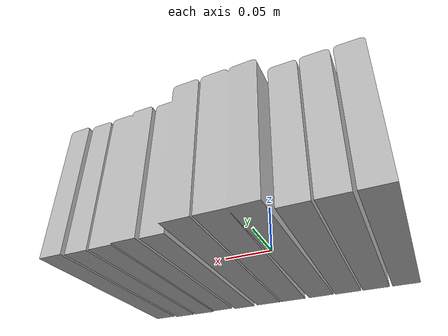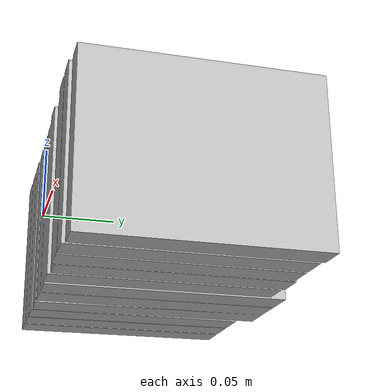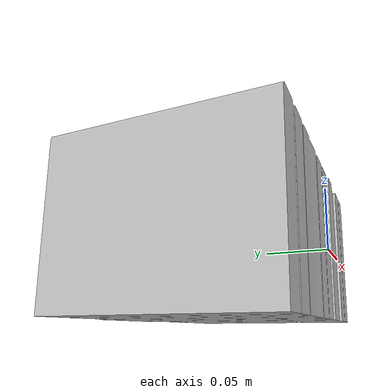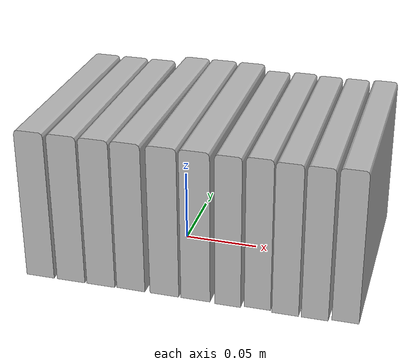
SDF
<?xml version="1.0" ?>
<sdf version="1.4">
  <model name="shelf3_book3_v5">
    <link name="body">
      <pose>0 0 0 0 0 0</pose>
      <inertial>
        <pose>   0.001086   0.082616   0.006443 0 0 0</pose>
        <mass>0.5</mass>
        <inertia>
          <ixx>0.01</ixx>
          <ixy>0</ixy>
          <ixz>0</ixz>
          <iyy>0.01</iyy>
          <iyz>0</iyz>
          <izz>0.01</izz>
        </inertia>
      </inertial>
      <collision name="collision">
        <geometry>
          <mesh>
            <uri>model://bookshelf/shelf3_items/book3_v5/book3_v5.dae</uri>
          </mesh>
        </geometry>
      </collision>
      <visual name="visual">
        <geometry>
          <mesh>
            <uri>model://bookshelf/shelf3_items/book3_v5/book3_v5.dae</uri>
          </mesh>
        </geometry>
      </visual>
    </link>
  </model>
</sdf>
